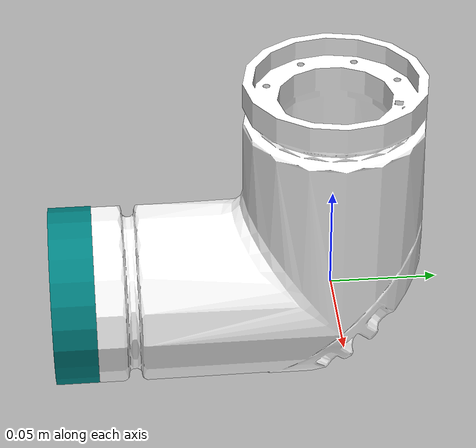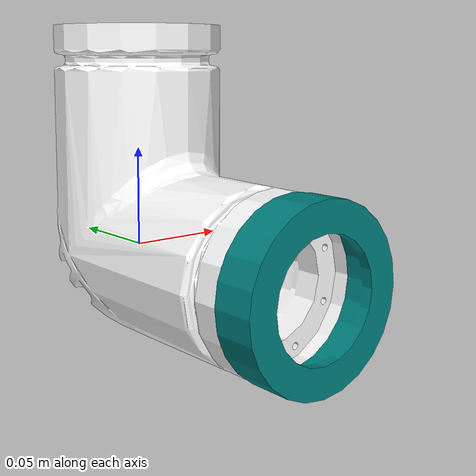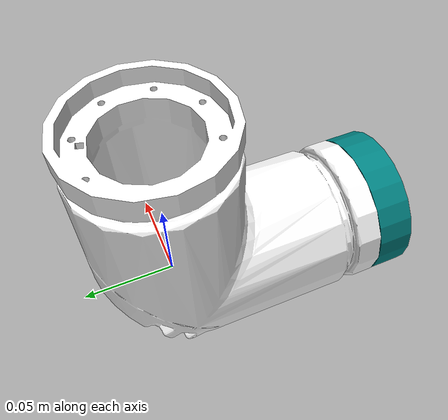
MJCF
<mujoco model="l5">
  <default>
    <default class="visual">
      <geom group="2" type="mesh" contype="0" conaffinity="0"/>
    </default>
    <default class="collision">
      <geom group="3" type="mesh"/>
    </default>
  </default>
  <asset>
    <material name="MTL0.014" specular="0.0" shininess="0.25" rgba="0.000000 0.502000 0.502000 1.000000"/>
    <material name="MTL0.015" specular="0.0" shininess="0.25" rgba="1.000000 1.000000 1.000000 1.000000"/>
    <material name="MTL1.006" specular="0.0" shininess="0.25" rgba="0.000000 0.502000 0.502000 1.000000"/>
    <mesh file="l5_0.obj"/>
    <mesh file="l5_1.obj"/>
    <mesh file="l5_2.obj"/>
  </asset>
  <worldbody>
    <body name="l5">
      <geom mesh="l5_0" material="MTL1.006" class="visual"/>
      <geom mesh="l5_1" material="MTL0.015" class="visual"/>
      <geom mesh="l5_2" material="MTL0.014" class="visual"/>
      <geom mesh="l5_0" class="collision"/>
      <geom mesh="l5_1" class="collision"/>
      <geom mesh="l5_2" class="collision"/>
    </body>
  </worldbody>
</mujoco>
